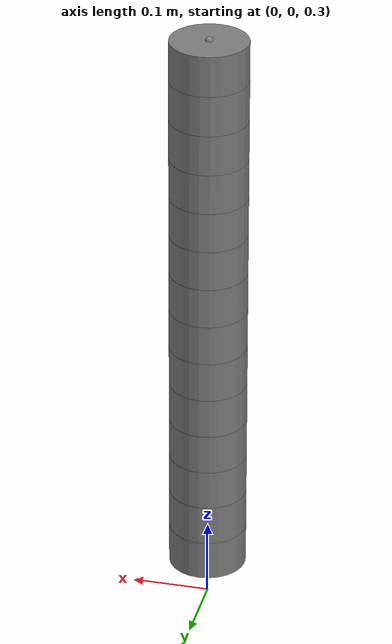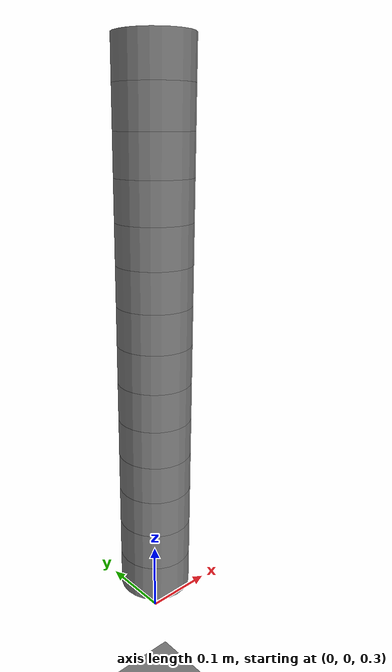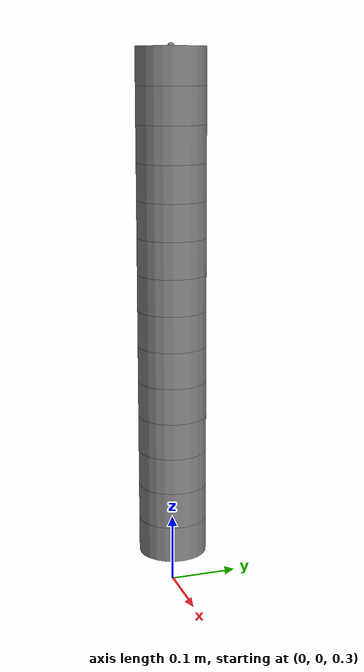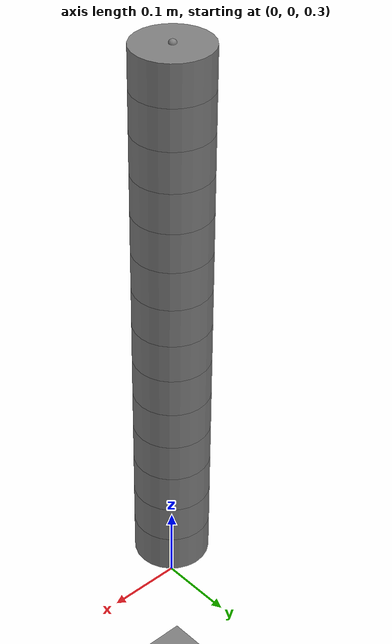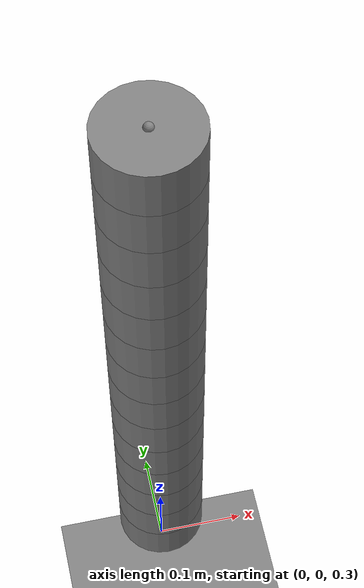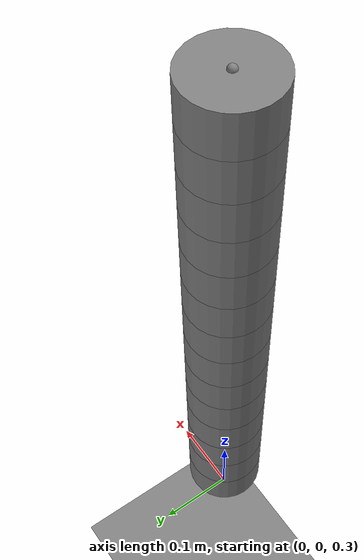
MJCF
<mujoco model="zbot"><compiler angle="degree"/><option gravity="0 0 -9.81"/><default><joint limited="true" damping="1"/><geom contype="1" conaffinity="1" margin="0.0005"/></default><worldbody><geom name="floor" type="plane" size="2 2 .1"/><body name="base" pos="0 0 0.35"><geom name="a_0" type="cylinder" size="0.05 0.0265" pos="0 0 0.0265" quat="1 0 0 0" mass="0.5"/><body name="body_0" pos="0 0 0.053"><joint name="joint_0" axis="0 -1 1" range="-180 180"/><geom name="b_0" type="cylinder" size="0.05 0.0265" pos="0 0 0.0265" quat="1 0 0 0" mass="0.5"/><body pos="0 0 0.053" quat="6.123233995736766e-17 0 0 1"><geom name="a_1" type="cylinder" size="0.05 0.0265" pos="0 0 0.0265" quat="1 0 0 0" mass="0.5"/><body name="body_1" pos="0 0 0.053"><joint name="joint_1" axis="0 -1 1" range="-180 180"/><geom name="b_1" type="cylinder" size="0.05 0.0265" pos="0 0 0.0265" quat="1 0 0 0" mass="0.5"/><body pos="0 0 0.053" quat="6.123233995736766e-17 0 0 1"><geom name="a_2" type="cylinder" size="0.05 0.0265" pos="0 0 0.0265" quat="1 0 0 0" mass="0.5"/><body name="body_2" pos="0 0 0.053"><joint name="joint_2" axis="0 -1 1" range="-180 180"/><geom name="b_2" type="cylinder" size="0.05 0.0265" pos="0 0 0.0265" quat="1 0 0 0" mass="0.5"/><body pos="0 0 0.053" quat="6.123233995736766e-17 0 0 1"><geom name="a_3" type="cylinder" size="0.05 0.0265" pos="0 0 0.0265" quat="1 0 0 0" mass="0.5"/><body name="body_3" pos="0 0 0.053"><joint name="joint_3" axis="0 -1 1" range="-180 180"/><geom name="b_3" type="cylinder" size="0.05 0.0265" pos="0 0 0.0265" quat="1 0 0 0" mass="0.5"/><body pos="0 0 0.053" quat="6.123233995736766e-17 0 0 1"><geom name="a_4" type="cylinder" size="0.05 0.0265" pos="0 0 0.0265" quat="1 0 0 0" mass="0.5"/><body name="body_4" pos="0 0 0.053"><joint name="joint_4" axis="0 -1 1" range="-180 180"/><geom name="b_4" type="cylinder" size="0.05 0.0265" pos="0 0 0.0265" quat="1 0 0 0" mass="0.5"/><body pos="0 0 0.053" quat="6.123233995736766e-17 0 0 1"><geom name="a_5" type="cylinder" size="0.05 0.0265" pos="0 0 0.0265" quat="1 0 0 0" mass="0.5"/><body name="body_5" pos="0 0 0.053"><joint name="joint_5" axis="0 -1 1" range="-180 180"/><geom name="b_5" type="cylinder" size="0.05 0.0265" pos="0 0 0.0265" quat="1 0 0 0" mass="0.5"/><body pos="0 0 0.053" quat="6.123233995736766e-17 0 0 1"><geom name="a_6" type="cylinder" size="0.05 0.0265" pos="0 0 0.0265" quat="1 0 0 0" mass="0.5"/><body name="body_6" pos="0 0 0.053"><joint name="joint_6" axis="0 -1 1" range="-180 180"/><geom name="b_6" type="cylinder" size="0.05 0.0265" pos="0 0 0.0265" quat="1 0 0 0" mass="0.5"/><body pos="0 0 0.053" quat="1 0 0 0"><site name="tip" size="0.005"/></body></body></body></body></body></body></body></body></body></body></body></body></body></body></body></worldbody><contact><exclude body1="base" body2="body_0"/><exclude body1="body_0" body2="body_1"/><exclude body1="body_1" body2="body_2"/><exclude body1="body_2" body2="body_3"/><exclude body1="body_3" body2="body_4"/><exclude body1="body_4" body2="body_5"/><exclude body1="body_5" body2="body_6"/></contact><actuator><position joint="joint_0" kp="80"/><position joint="joint_1" kp="80"/><position joint="joint_2" kp="80"/><position joint="joint_3" kp="80"/><position joint="joint_4" kp="80"/><position joint="joint_5" kp="80"/><position joint="joint_6" kp="80"/></actuator></mujoco>
